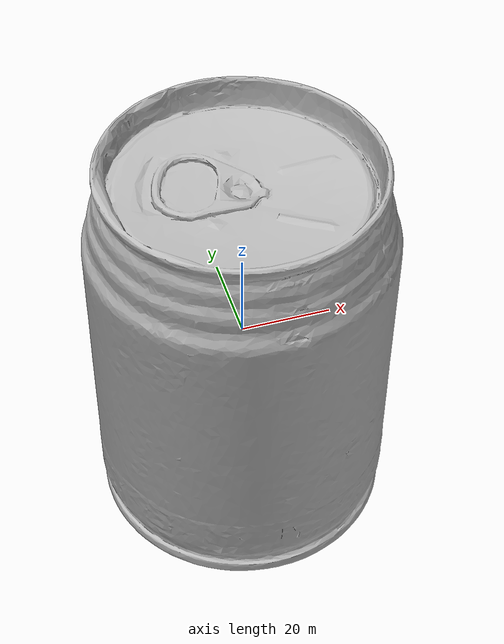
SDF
<sdf version="1.4">
 <world name="default">
  <light name="light1" type="point">
   <pose>0 0 1 0 0 0</pose>
   <diffuse>3 3 3 1</diffuse>
   <specular>3 3 3 1</specular>
  </light>
  <light name="light2" type="point">
   <pose>0 0.5 2 0 0 0</pose>
   <diffuse>1 1 1 1</diffuse>
   <specular>1 1 1 1</specular>
  </light>
  <light name="light3" type="point">
   <pose>0 0.5 2 0 0 0</pose>
   <diffuse>3 3 3 1</diffuse>
   <specular>3 3 3 1</specular>
  </light>
  <scene><ambient>0.7 0.7 0.7</ambient></scene>
  <model name="box1">
   <link name="link_box1">
    <collision name="default">
     <geometry>
      <mesh><uri>model://wooden_puzzle1/collision_meshes/collision.obj</uri><scale>1.0 1.0 1.0</scale></mesh>
     </geometry>
     <surface>
      <friction><ode><mu>0.5</mu><mu2>0.5</mu2></ode></friction>
      <contact><ode><max_vel>0</max_vel><min_depth>0.0001</min_depth><kp>1e8</kp></ode></contact>
     </surface>
    </collision>
    <visual name="default">
     <geometry>
      <mesh><uri>model://wooden_puzzle1/visual_meshes/visual.dae</uri><scale>1.0 1.0 1.0</scale></mesh>
     </geometry>
    </visual>
    <inertial>
     <mass>0.025116289034485817</mass>
     <pose>-0.00017350679263472557 7.972260937094688e-05 -9.191555000143126e-05 -0.07784885804399136 -0.2636065522190298 -0.5528757227143044</pose>
     <inertia>
      <ixx>4.7387575e-06</ixx>
      <iyy>4.647534e-06</iyy>
      <izz>4.7029785e-06</izz>
      <ixy>0</ixy>
      <ixz>0</ixz>
      <iyz>0</iyz>
     </inertia>
    </inertial>
   </link>
   <pose>0.02226700447499752 -0.10281708091497421 0.01680201105773449 0.010511440990178566 -0.009453907498701557 0.8843149573865599</pose>
  </model>
  <model name="box3">
   <link name="link_box3">
    <collision name="default">
     <geometry>
      <mesh><uri>model://wooden_puzzle2/collision_meshes/collision.obj</uri><scale>1.0 1.0 1.0</scale></mesh>
     </geometry>
     <surface>
      <friction><ode><mu>0.5</mu><mu2>0.5</mu2></ode></friction>
      <contact><ode><max_vel>0</max_vel><min_depth>0.0001</min_depth><kp>1e8</kp></ode></contact>
     </surface>
    </collision>
    <visual name="default">
     <geometry>
      <mesh><uri>model://wooden_puzzle2/visual_meshes/visual.dae</uri><scale>1.0 1.0 1.0</scale></mesh>
     </geometry>
    </visual>
    <inertial>
     <mass>0.025376593694090843</mass>
     <pose>2.7402536943554878e-05 4.997663199901581e-05 6.587122334167361e-05 -0.1920355258808483 0.6112750807505014 -0.6338716229052327</pose>
     <inertia>
      <ixx>4.7172375e-06</ixx>
      <iyy>4.8472266e-06</iyy>
      <izz>4.778271e-06</izz>
      <ixy>0</ixy>
      <ixz>0</ixz>
      <iyz>0</iyz>
     </inertia>
    </inertial>
   </link>
   <pose>0.2811424434185028 -0.04257279634475708 0.01691773533821106 0.020848096429482238 0.0007216975380514827 -3.129133887004034</pose>
  </model>
  <model name="can1">
   <link name="link_can1">
    <collision name="default">
     <geometry>
      <mesh><uri>model://redbull/collision_meshes/collision.obj</uri><scale>1.0 1.0 1.0</scale></mesh>
     </geometry>
     <surface>
      <friction><ode><mu>0.5</mu><mu2>0.5</mu2></ode></friction>
      <contact><ode><max_vel>0</max_vel><min_depth>0.0001</min_depth><kp>1e8</kp></ode></contact>
     </surface>
    </collision>
    <visual name="default">
     <geometry>
      <mesh><uri>model://redbull/visual_meshes/visual.dae</uri><scale>1.0 1.0 1.0</scale></mesh>
     </geometry>
    </visual>
    <inertial>
     <mass>0.2544018626213074</mass>
     <pose>-2.2126756448415108e-05 -0.0001265947794308886 -0.0006860987632535398 0.0011376600102847077 -0.01080087162846833 0.5858227764205248</pose>
     <inertia>
      <ixx>0.00023919248</ixx>
      <iyy>0.00023939437</iyy>
      <izz>0.00014194298</izz>
      <ixy>0</ixy>
      <ixz>0</ixz>
      <iyz>0</iyz>
     </inertia>
    </inertial>
   </link>
   <pose>0.055017467588186264 0.13459765911102295 0.046385642141103745 -0.01048885548986302 0.007261064060910653 -1.5069392346834045</pose>
  </model>
  <model name="can2">
   <link name="link_can2">
    <collision name="default">
     <geometry>
      <mesh><uri>model://pepsi/collision_meshes/collision.obj</uri><scale>1.0 1.0 1.0</scale></mesh>
     </geometry>
     <surface>
      <friction><ode><mu>0.5</mu><mu2>0.5</mu2></ode></friction>
      <contact><ode><max_vel>0</max_vel><min_depth>0.0001</min_depth><kp>1e8</kp></ode></contact>
     </surface>
    </collision>
    <visual name="default">
     <geometry><mesh><uri>model://pepsi/visual_meshes/visual.dae</uri><scale>1.0 1.0 1.0</scale></mesh></geometry>
    </visual>
    <inertial>
     <mass>0.4552207291126251</mass>
     <pose>-7.5590331107378e-05 2.99312814604491e-05 -0.0003384356095921248 -0.0010679690801074441 -0.0021734768369219134 0.5674650232372158</pose>
     <inertia>
      <ixx>0.0009068869</ixx>
      <iyy>0.0009062263</iyy>
      <izz>0.00019301806</izz>
      <ixy>0</ixy>
      <ixz>0</ixz>
      <iyz>0</iyz>
     </inertia>
    </inertial>
   </link>
   <pose>0.13961432874202728 -0.3706566393375397 0.0744963213801384 -1.8598359787701328e-05 2.2243432216293963e-06 -1.0593568203319015</pose>
  </model>
  <physics type="ode">
   <max_contacts>50</max_contacts>
   <ode>
    <solver><type>quick</type><iters>75</iters></solver>
    <constraints>
     <contact_max_correcting_vel>0</contact_max_correcting_vel>
     <contact_surface_layer>0</contact_surface_layer>
    </constraints>
   </ode>
  </physics>
 </world>
</sdf>
